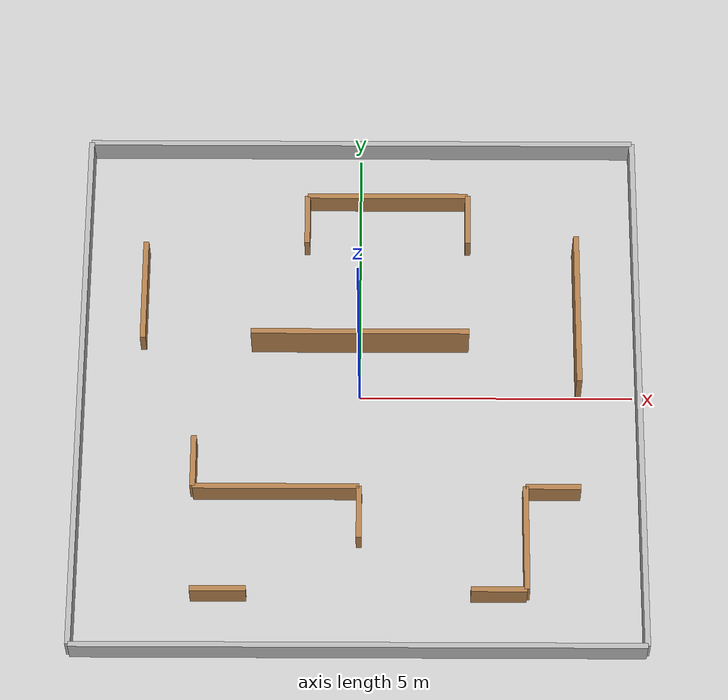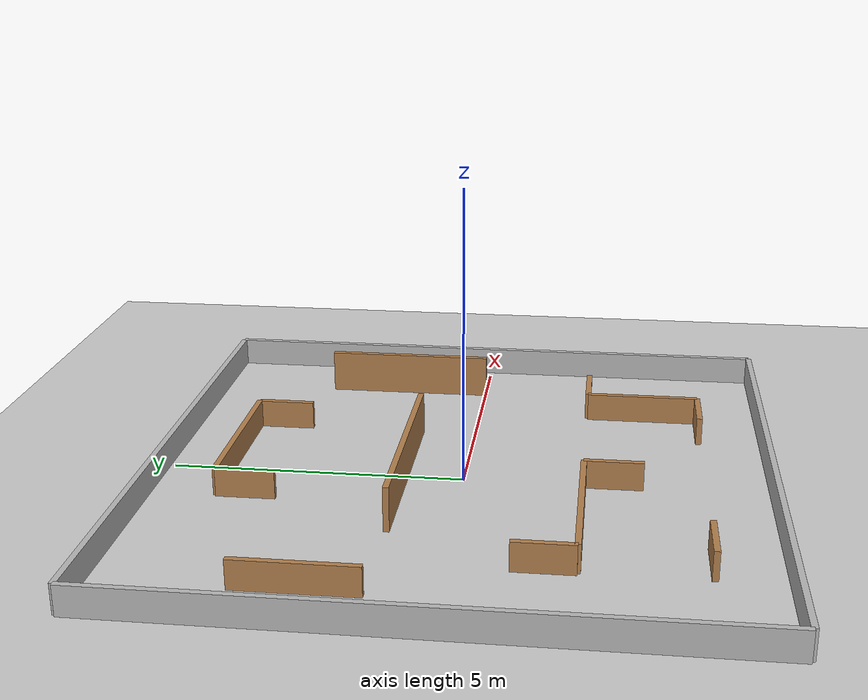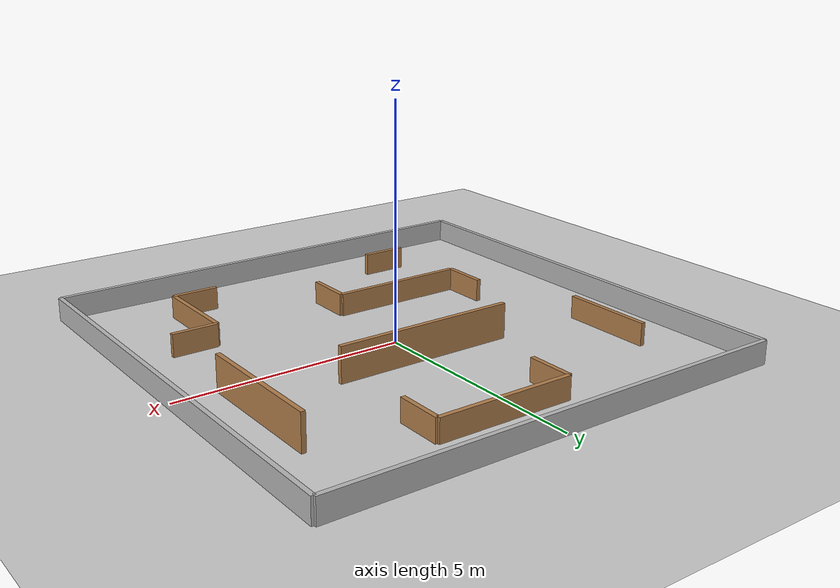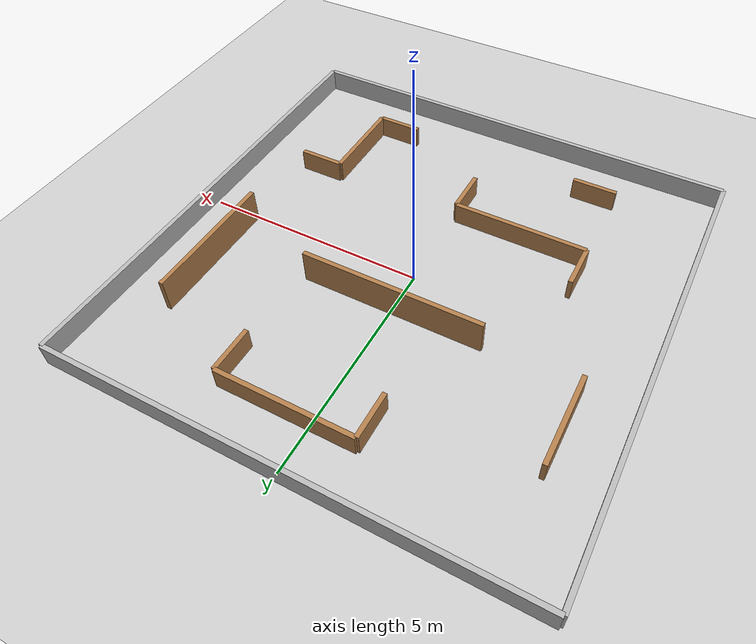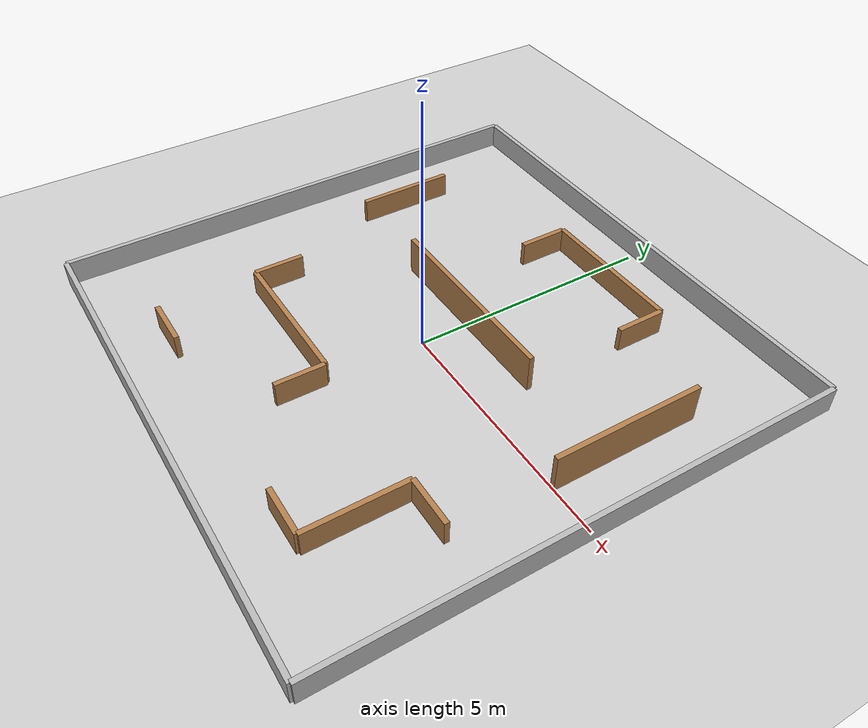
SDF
<sdf version="1.6">
 <world name="default">
  <plugin name="ros_link_attacher_plugin" filename="libgazebo_ros_link_attacher.so"/>
  <light name="sun" type="directional">
   <pose>0 0 10 0 -0 0</pose>
   <diffuse>0.8 0.8 0.8 1</diffuse>
   <specular>0.1 0.1 0.1 1</specular>
   <attenuation>
    <range>1000</range>
    <constant>0.9</constant>
    <linear>0.01</linear>
    <quadratic>0.001</quadratic>
   </attenuation>
   <direction>-0.5 0.5 -1</direction>
  </light>
  <model name="ground_plane">
   <static>1</static>
   <link name="link">
    <collision name="collision">
     <geometry><plane><normal>0 0 1</normal><size>100 100</size></plane></geometry>
     <surface><friction><ode><mu>100</mu><mu2>50</mu2></ode></friction></surface>
    </collision>
    <visual name="visual">
     <cast_shadows>0</cast_shadows>
     <geometry><plane><normal>0 0 1</normal><size>100 100</size></plane></geometry>
     <material>
      <script><uri>file://media/materials/scripts/gazebo.material</uri><name>Gazebo/Grey</name></script>
     </material>
    </visual>
   </link>
  </model>
  <gravity>0 0 -9.8</gravity>
  <magnetic_field>6e-06 2.3e-05 -4.2e-05</magnetic_field>
  <atmosphere type="adiabatic"/>
  <physics name="default_physics" default="0" type="ode">
   <max_step_size>0.001</max_step_size>
   <real_time_factor>1</real_time_factor>
   <real_time_update_rate>1000</real_time_update_rate>
  </physics>
  <scene><ambient>0.4 0.4 0.4 1</ambient><background>0.7 0.7 0.7 1</background><shadows>1</shadows></scene>
  <spherical_coordinates>
   <surface_model>EARTH_WGS84</surface_model>
   <latitude_deg>0</latitude_deg>
   <longitude_deg>0</longitude_deg>
   <elevation>0</elevation>
   <heading_deg>0</heading_deg>
  </spherical_coordinates>
  <model name="grey_wall">
   <static>1</static>
   <link name="link">
    <pose>0 0 1.4 0 -0 0</pose>
    <collision name="collision"><geometry><box><size>10.2 0.1 0.5</size></box></geometry></collision>
    <visual name="visual">
     <cast_shadows>0</cast_shadows>
     <geometry><box><size>10.2 0.1 0.5</size></box></geometry>
    </visual>
   </link>
   <pose>0 -5.1 -1.1 0 -0 0</pose>
  </model>
  <model name="grey_wall_0">
   <static>1</static>
   <link name="link">
    <pose>0 0 1.4 0 -0 0</pose>
    <collision name="collision"><geometry><box><size>10.2 0.1 0.5</size></box></geometry></collision>
    <visual name="visual">
     <cast_shadows>0</cast_shadows>
     <geometry><box><size>10.2 0.1 0.5</size></box></geometry>
    </visual>
   </link>
   <pose>5.1 0 -1.1 0 -0 1.57</pose>
  </model>
  <model name="grey_wall_0_clone">
   <static>1</static>
   <link name="link">
    <pose>0 0 1.4 0 -0 0</pose>
    <collision name="collision"><geometry><box><size>10.2 0.1 0.5</size></box></geometry></collision>
    <visual name="visual">
     <cast_shadows>0</cast_shadows>
     <geometry><box><size>10.2 0.1 0.5</size></box></geometry>
    </visual>
   </link>
   <pose>-5.1 0 -1.1 0 -0 1.57</pose>
  </model>
  <model name="grey_wall_clone">
   <static>1</static>
   <link name="link">
    <pose>0 0 1.4 0 -0 0</pose>
    <collision name="collision"><geometry><box><size>10.2 0.1 0.5</size></box></geometry></collision>
    <visual name="visual">
     <cast_shadows>0</cast_shadows>
     <geometry><box><size>10.2 0.1 0.5</size></box></geometry>
    </visual>
   </link>
   <pose>0 5.1 -1.1 0 -0 0</pose>
  </model>
  <model name="wood_cube_10cm">
   <static>1</static>
   <link name="link">
    <pose>0 0 0.05 0 -0 0</pose>
    <inertial>
     <mass>0.5167</mass>
     <inertia>
      <ixx>0.000861167</ixx>
      <ixy>0</ixy>
      <ixz>0</ixz>
      <iyy>0.000861167</iyy>
      <iyz>0</iyz>
      <izz>0.000861167</izz>
     </inertia>
    </inertial>
    <collision name="collision">
     <geometry><box><size>4 0.1 0.8</size></box></geometry>
     <surface>
      <contact>
       <poissons_ratio>0.347</poissons_ratio>
       <elastic_modulus>8.8e+09</elastic_modulus>
       <ode><kp>100000</kp><kd>100</kd><max_vel>100</max_vel><min_depth>0.001</min_depth></ode>
      </contact>
      <friction>
       <torsional>
        <coefficient>1</coefficient>
        <use_patch_radius>0</use_patch_radius>
        <surface_radius>0.01</surface_radius>
       </torsional>
      </friction>
     </surface>
    </collision>
    <visual name="visual">
     <geometry><box><size>4 0.1 0.8</size></box></geometry>
     <material>
      <script><uri>file://media/materials/scripts/gazebo.material</uri><name>Gazebo/Wood</name></script>
     </material>
    </visual>
   </link>
   <pose>0 1 0.3 0 -0 0</pose>
  </model>
  <model name="wood_cube_10cm_clone_0">
   <static>1</static>
   <link name="link">
    <pose>0 0 0.05 0 -0 0</pose>
    <inertial>
     <mass>0.5167</mass>
     <inertia>
      <ixx>0.000861167</ixx>
      <ixy>0</ixy>
      <ixz>0</ixz>
      <iyy>0.000861167</iyy>
      <iyz>0</iyz>
      <izz>0.000861167</izz>
     </inertia>
    </inertial>
    <collision name="collision">
     <geometry><box><size>0.1 3 0.8</size></box></geometry>
     <surface>
      <contact>
       <poissons_ratio>0.347</poissons_ratio>
       <elastic_modulus>8.8e+09</elastic_modulus>
       <ode><kp>100000</kp><kd>100</kd><max_vel>100</max_vel><min_depth>0.001</min_depth></ode>
      </contact>
      <friction>
       <torsional>
        <coefficient>1</coefficient>
        <use_patch_radius>0</use_patch_radius>
        <surface_radius>0.01</surface_radius>
       </torsional>
      </friction>
     </surface>
    </collision>
    <visual name="visual">
     <geometry><box><size>0.1 3 0.8</size></box></geometry>
     <material>
      <script><uri>file://media/materials/scripts/gazebo.material</uri><name>Gazebo/Wood</name></script>
     </material>
    </visual>
   </link>
   <pose>4 1.5 0.3 0 -0 0</pose>
  </model>
  <model name="wood_cube_10cm_clone_1">
   <static>1</static>
   <link name="link">
    <pose>0 0 0.05 0 -0 0</pose>
    <inertial>
     <mass>0.5167</mass>
     <inertia>
      <ixx>0.000861167</ixx>
      <ixy>0</ixy>
      <ixz>0</ixz>
      <iyy>0.000861167</iyy>
      <iyz>0</iyz>
      <izz>0.000861167</izz>
     </inertia>
    </inertial>
    <collision name="collision">
     <geometry><box><size>3 0.1 0.8</size></box></geometry>
     <surface>
      <contact>
       <poissons_ratio>0.347</poissons_ratio>
       <elastic_modulus>8.8e+09</elastic_modulus>
       <ode><kp>100000</kp><kd>100</kd><max_vel>100</max_vel><min_depth>0.001</min_depth></ode>
      </contact>
      <friction>
       <torsional>
        <coefficient>1</coefficient>
        <use_patch_radius>0</use_patch_radius>
        <surface_radius>0.01</surface_radius>
       </torsional>
      </friction>
     </surface>
    </collision>
    <visual name="visual">
     <geometry><box><size>3 0.1 0.8</size></box></geometry>
     <material>
      <script><uri>file://media/materials/scripts/gazebo.material</uri><name>Gazebo/Wood</name></script>
     </material>
    </visual>
   </link>
   <pose>0.5 4 0.03 0 -0 0</pose>
  </model>
  <model name="wood_cube_10cm_clone_2">
   <static>1</static>
   <link name="link">
    <pose>0 0 0.05 0 -0 0</pose>
    <inertial>
     <mass>0.5167</mass>
     <inertia>
      <ixx>0.000861167</ixx>
      <ixy>0</ixy>
      <ixz>0</ixz>
      <iyy>0.000861167</iyy>
      <iyz>0</iyz>
      <izz>0.000861167</izz>
     </inertia>
    </inertial>
    <collision name="collision">
     <geometry><box><size>0.1 1 0.8</size></box></geometry>
     <surface>
      <contact>
       <poissons_ratio>0.347</poissons_ratio>
       <elastic_modulus>8.8e+09</elastic_modulus>
       <ode><kp>100000</kp><kd>100</kd><max_vel>100</max_vel><min_depth>0.001</min_depth></ode>
      </contact>
      <friction>
       <torsional>
        <coefficient>1</coefficient>
        <use_patch_radius>0</use_patch_radius>
        <surface_radius>0.01</surface_radius>
       </torsional>
      </friction>
     </surface>
    </collision>
    <visual name="visual">
     <geometry><box><size>0.1 1 0.8</size></box></geometry>
     <material>
      <script><uri>file://media/materials/scripts/gazebo.material</uri><name>Gazebo/Wood</name></script>
     </material>
    </visual>
   </link>
   <pose>2 3.5 0.03 0 -0 0</pose>
  </model>
  <model name="wood_cube_10cm_clone_3">
   <static>1</static>
   <link name="link">
    <pose>0 0 0.05 0 -0 0</pose>
    <inertial>
     <mass>0.5167</mass>
     <inertia>
      <ixx>0.000861167</ixx>
      <ixy>0</ixy>
      <ixz>0</ixz>
      <iyy>0.000861167</iyy>
      <iyz>0</iyz>
      <izz>0.000861167</izz>
     </inertia>
    </inertial>
    <collision name="collision">
     <geometry><box><size>0.1 1 0.8</size></box></geometry>
     <surface>
      <contact>
       <poissons_ratio>0.347</poissons_ratio>
       <elastic_modulus>8.8e+09</elastic_modulus>
       <ode><kp>100000</kp><kd>100</kd><max_vel>100</max_vel><min_depth>0.001</min_depth></ode>
      </contact>
      <friction>
       <torsional>
        <coefficient>1</coefficient>
        <use_patch_radius>0</use_patch_radius>
        <surface_radius>0.01</surface_radius>
       </torsional>
      </friction>
     </surface>
    </collision>
    <visual name="visual">
     <geometry><box><size>0.1 1 0.8</size></box></geometry>
     <material>
      <script><uri>file://media/materials/scripts/gazebo.material</uri><name>Gazebo/Wood</name></script>
     </material>
    </visual>
   </link>
   <pose>-1 3.5 0.03 0 -0 0</pose>
  </model>
  <model name="wood_cube_10cm_clone_4">
   <static>1</static>
   <link name="link">
    <pose>0 0 0.05 0 -0 0</pose>
    <inertial>
     <mass>0.5167</mass>
     <inertia>
      <ixx>0.000861167</ixx>
      <ixy>0</ixy>
      <ixz>0</ixz>
      <iyy>0.000861167</iyy>
      <iyz>0</iyz>
      <izz>0.000861167</izz>
     </inertia>
    </inertial>
    <collision name="collision">
     <geometry><box><size>3 0.1 0.8</size></box></geometry>
     <surface>
      <contact>
       <poissons_ratio>0.347</poissons_ratio>
       <elastic_modulus>8.8e+09</elastic_modulus>
       <ode><kp>100000</kp><kd>100</kd><max_vel>100</max_vel><min_depth>0.001</min_depth></ode>
      </contact>
      <friction>
       <torsional>
        <coefficient>1</coefficient>
        <use_patch_radius>0</use_patch_radius>
        <surface_radius>0.01</surface_radius>
       </torsional>
      </friction>
     </surface>
    </collision>
    <visual name="visual">
     <geometry><box><size>3 0.1 0.8</size></box></geometry>
     <material>
      <script><uri>file://media/materials/scripts/gazebo.material</uri><name>Gazebo/Wood</name></script>
     </material>
    </visual>
   </link>
   <pose>-1.5 -2 0.03 0 -0 0</pose>
  </model>
  <model name="wood_cube_10cm_clone_5">
   <static>1</static>
   <link name="link">
    <pose>0 0 0.05 0 -0 0</pose>
    <inertial>
     <mass>0.5167</mass>
     <inertia>
      <ixx>0.000861167</ixx>
      <ixy>0</ixy>
      <ixz>0</ixz>
      <iyy>0.000861167</iyy>
      <iyz>0</iyz>
      <izz>0.000861167</izz>
     </inertia>
    </inertial>
    <collision name="collision">
     <geometry><box><size>0.1 1 0.8</size></box></geometry>
     <surface>
      <contact>
       <poissons_ratio>0.347</poissons_ratio>
       <elastic_modulus>8.8e+09</elastic_modulus>
       <ode><kp>100000</kp><kd>100</kd><max_vel>100</max_vel><min_depth>0.001</min_depth></ode>
      </contact>
      <friction>
       <torsional>
        <coefficient>1</coefficient>
        <use_patch_radius>0</use_patch_radius>
        <surface_radius>0.01</surface_radius>
       </torsional>
      </friction>
     </surface>
    </collision>
    <visual name="visual">
     <geometry><box><size>0.1 1 0.8</size></box></geometry>
     <material>
      <script><uri>file://media/materials/scripts/gazebo.material</uri><name>Gazebo/Wood</name></script>
     </material>
    </visual>
   </link>
   <pose>0 -2.5 0.03 0 -0 0</pose>
  </model>
  <model name="wood_cube_10cm_clone_6">
   <static>1</static>
   <link name="link">
    <pose>0 0 0.05 0 -0 0</pose>
    <inertial>
     <mass>0.5167</mass>
     <inertia>
      <ixx>0.000861167</ixx>
      <ixy>0</ixy>
      <ixz>0</ixz>
      <iyy>0.000861167</iyy>
      <iyz>0</iyz>
      <izz>0.000861167</izz>
     </inertia>
    </inertial>
    <collision name="collision">
     <geometry><box><size>0.1 1 0.8</size></box></geometry>
     <surface>
      <contact>
       <poissons_ratio>0.347</poissons_ratio>
       <elastic_modulus>8.8e+09</elastic_modulus>
       <ode><kp>100000</kp><kd>100</kd><max_vel>100</max_vel><min_depth>0.001</min_depth></ode>
      </contact>
      <friction>
       <torsional>
        <coefficient>1</coefficient>
        <use_patch_radius>0</use_patch_radius>
        <surface_radius>0.01</surface_radius>
       </torsional>
      </friction>
     </surface>
    </collision>
    <visual name="visual">
     <geometry><box><size>0.1 1 0.8</size></box></geometry>
     <material>
      <script><uri>file://media/materials/scripts/gazebo.material</uri><name>Gazebo/Wood</name></script>
     </material>
    </visual>
   </link>
   <pose>-3 -1.5 0.03 0 -0 0</pose>
  </model>
  <model name="wood_cube_10cm_clone_7">
   <static>1</static>
   <link name="link">
    <pose>0 0 0.05 0 -0 0</pose>
    <inertial>
     <mass>0.5167</mass>
     <inertia>
      <ixx>0.000861167</ixx>
      <ixy>0</ixy>
      <ixz>0</ixz>
      <iyy>0.000861167</iyy>
      <iyz>0</iyz>
      <izz>0.000861167</izz>
     </inertia>
    </inertial>
    <collision name="collision">
     <geometry><box><size>0.1 2 0.8</size></box></geometry>
     <surface>
      <contact>
       <poissons_ratio>0.347</poissons_ratio>
       <elastic_modulus>8.8e+09</elastic_modulus>
       <ode><kp>100000</kp><kd>100</kd><max_vel>100</max_vel><min_depth>0.001</min_depth></ode>
      </contact>
      <friction>
       <torsional>
        <coefficient>1</coefficient>
        <use_patch_radius>0</use_patch_radius>
        <surface_radius>0.01</surface_radius>
       </torsional>
      </friction>
     </surface>
    </collision>
    <visual name="visual">
     <geometry><box><size>0.1 2 0.8</size></box></geometry>
     <material>
      <script><uri>file://media/materials/scripts/gazebo.material</uri><name>Gazebo/Wood</name></script>
     </material>
    </visual>
   </link>
   <pose>-4 2 0.03 0 -0 0</pose>
  </model>
  <model name="wood_cube_10cm_clone_8">
   <static>1</static>
   <link name="link">
    <pose>0 0 0.05 0 -0 0</pose>
    <inertial>
     <mass>0.5167</mass>
     <inertia>
      <ixx>0.000861167</ixx>
      <ixy>0</ixy>
      <ixz>0</ixz>
      <iyy>0.000861167</iyy>
      <iyz>0</iyz>
      <izz>0.000861167</izz>
     </inertia>
    </inertial>
    <collision name="collision">
     <geometry><box><size>0.1 2 0.8</size></box></geometry>
     <surface>
      <contact>
       <poissons_ratio>0.347</poissons_ratio>
       <elastic_modulus>8.8e+09</elastic_modulus>
       <ode><kp>100000</kp><kd>100</kd><max_vel>100</max_vel><min_depth>0.001</min_depth></ode>
      </contact>
      <friction>
       <torsional>
        <coefficient>1</coefficient>
        <use_patch_radius>0</use_patch_radius>
        <surface_radius>0.01</surface_radius>
       </torsional>
      </friction>
     </surface>
    </collision>
    <visual name="visual">
     <geometry><box><size>0.1 2 0.8</size></box></geometry>
     <material>
      <script><uri>file://media/materials/scripts/gazebo.material</uri><name>Gazebo/Wood</name></script>
     </material>
    </visual>
   </link>
   <pose>3 -3 0.03 0 -0 0</pose>
  </model>
  <model name="wood_cube_10cm_clone_9">
   <static>1</static>
   <link name="link">
    <pose>0 0 0.05 0 -0 0</pose>
    <inertial>
     <mass>0.5167</mass>
     <inertia>
      <ixx>0.000861167</ixx>
      <ixy>0</ixy>
      <ixz>0</ixz>
      <iyy>0.000861167</iyy>
      <iyz>0</iyz>
      <izz>0.000861167</izz>
     </inertia>
    </inertial>
    <collision name="collision">
     <geometry><box><size>1 0.1 0.8</size></box></geometry>
     <surface>
      <contact>
       <poissons_ratio>0.347</poissons_ratio>
       <elastic_modulus>8.8e+09</elastic_modulus>
       <ode><kp>100000</kp><kd>100</kd><max_vel>100</max_vel><min_depth>0.001</min_depth></ode>
      </contact>
      <friction>
       <torsional>
        <coefficient>1</coefficient>
        <use_patch_radius>0</use_patch_radius>
        <surface_radius>0.01</surface_radius>
       </torsional>
      </friction>
     </surface>
    </collision>
    <visual name="visual">
     <geometry><box><size>1 0.1 0.8</size></box></geometry>
     <material>
      <script><uri>file://media/materials/scripts/gazebo.material</uri><name>Gazebo/Wood</name></script>
     </material>
    </visual>
   </link>
   <pose>3.5 -2 0.03 0 -0 0</pose>
  </model>
  <model name="wood_cube_10cm_clone_10">
   <static>1</static>
   <link name="link">
    <pose>0 0 0.05 0 -0 0</pose>
    <inertial>
     <mass>0.5167</mass>
     <inertia>
      <ixx>0.000861167</ixx>
      <ixy>0</ixy>
      <ixz>0</ixz>
      <iyy>0.000861167</iyy>
      <iyz>0</iyz>
      <izz>0.000861167</izz>
     </inertia>
    </inertial>
    <collision name="collision">
     <geometry><box><size>1 0.1 0.8</size></box></geometry>
     <surface>
      <contact>
       <poissons_ratio>0.347</poissons_ratio>
       <elastic_modulus>8.8e+09</elastic_modulus>
       <ode><kp>100000</kp><kd>100</kd><max_vel>100</max_vel><min_depth>0.001</min_depth></ode>
      </contact>
      <friction>
       <torsional>
        <coefficient>1</coefficient>
        <use_patch_radius>0</use_patch_radius>
        <surface_radius>0.01</surface_radius>
       </torsional>
      </friction>
     </surface>
    </collision>
    <visual name="visual">
     <geometry><box><size>1 0.1 0.8</size></box></geometry>
     <material>
      <script><uri>file://media/materials/scripts/gazebo.material</uri><name>Gazebo/Wood</name></script>
     </material>
    </visual>
   </link>
   <pose>2.5 -4 0.03 0 -0 0</pose>
  </model>
  <model name="wood_cube_10cm_clone_11">
   <static>1</static>
   <link name="link">
    <pose>0 0 0.05 0 -0 0</pose>
    <inertial>
     <mass>0.5167</mass>
     <inertia>
      <ixx>0.000861167</ixx>
      <ixy>0</ixy>
      <ixz>0</ixz>
      <iyy>0.000861167</iyy>
      <iyz>0</iyz>
      <izz>0.000861167</izz>
     </inertia>
    </inertial>
    <collision name="collision">
     <geometry><box><size>1 0.1 0.8</size></box></geometry>
     <surface>
      <contact>
       <poissons_ratio>0.347</poissons_ratio>
       <elastic_modulus>8.8e+09</elastic_modulus>
       <ode><kp>100000</kp><kd>100</kd><max_vel>100</max_vel><min_depth>0.001</min_depth></ode>
      </contact>
      <friction>
       <torsional>
        <coefficient>1</coefficient>
        <use_patch_radius>0</use_patch_radius>
        <surface_radius>0.01</surface_radius>
       </torsional>
      </friction>
     </surface>
    </collision>
    <visual name="visual">
     <geometry><box><size>1 0.1 0.8</size></box></geometry>
     <material>
      <script><uri>file://media/materials/scripts/gazebo.material</uri><name>Gazebo/Wood</name></script>
     </material>
    </visual>
   </link>
   <pose>-2.5 -4 0.03 0 -0 0</pose>
  </model>
 </world>
</sdf>
